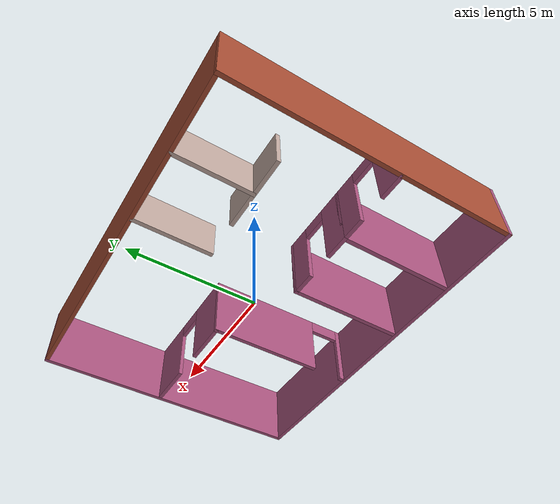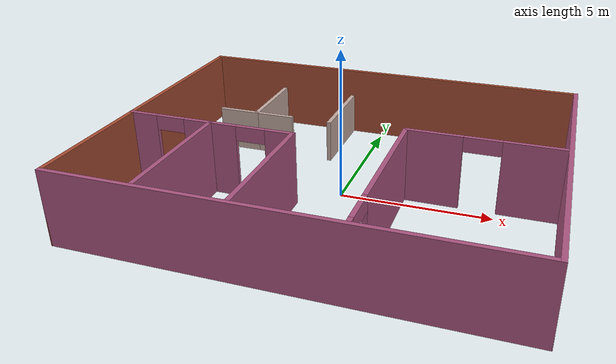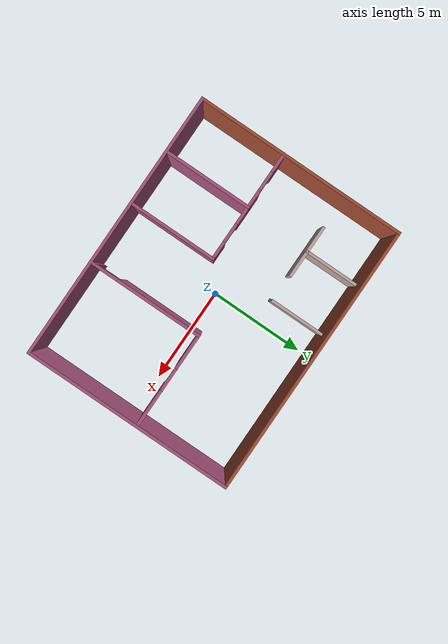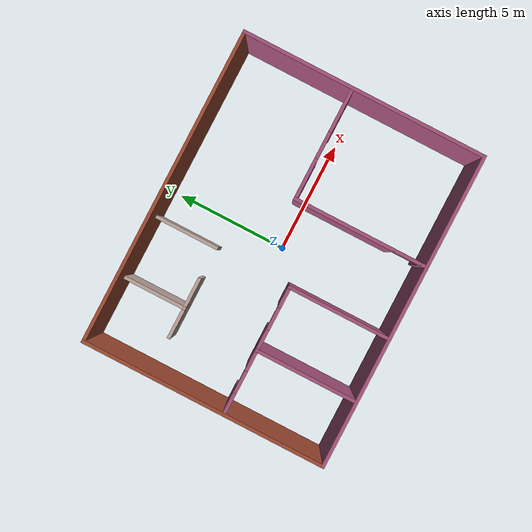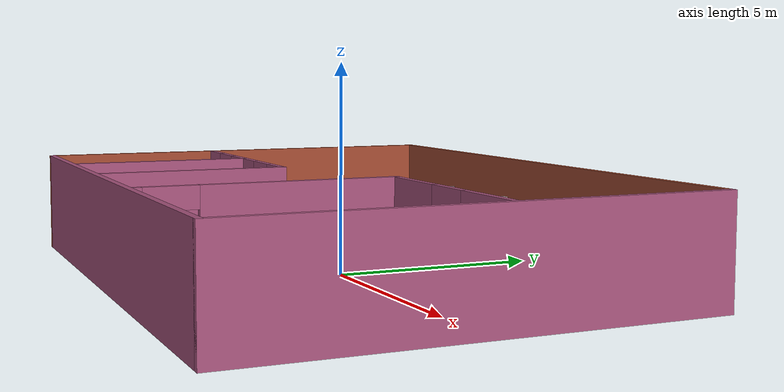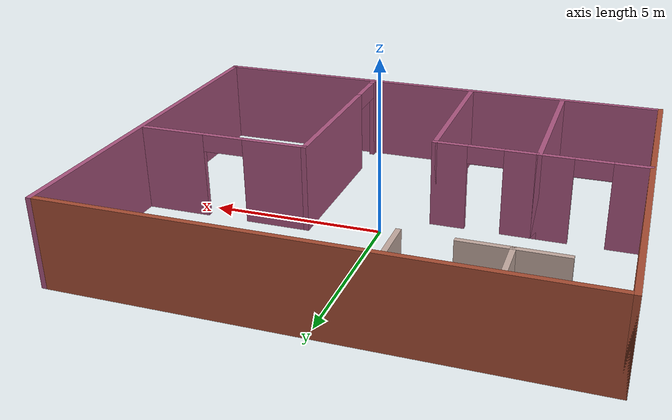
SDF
<?xml version='1.0'?>
<sdf version='1.6'>
  <model name='Building'>
    <pose frame=''>0 -0.075 0 0 -0 0</pose>
    <link name='Wall_12'>
      <pose frame=''>-5.528 -0.925 0 0 -0 0</pose>
      <visual name='Wall_12_Visual_0'>
        <pose frame=''>-1.00127 0 1.25 0 -0 0</pose>
        <geometry>
          <box>
            <size>0.997471 0.15 2.5</size>
          </box>
        </geometry>
        <material>
          <script>
            <uri>file://media/materials/scripts/gazebo.material</uri>
            <name>Gazebo/Grey</name>
          </script>
          <ambient>0.666667 0.333333 0.498039 1</ambient>
        </material>
        <meta>
          <layer>0</layer>
        </meta>
      </visual>
      <collision name='Wall_12_Collision_0'>
        <geometry>
          <box>
            <size>0.997471 0.15 2.5</size>
          </box>
        </geometry>
        <pose frame=''>-1.00127 0 1.25 0 -0 0</pose>
      </collision>
      <visual name='Wall_12_Visual_1'>
        <pose frame=''>0.998735 0 1.25 0 -0 0</pose>
        <geometry>
          <box>
            <size>1.00253 0.15 2.5</size>
          </box>
        </geometry>
        <material>
          <script>
            <uri>file://media/materials/scripts/gazebo.material</uri>
            <name>Gazebo/Grey</name>
          </script>
          <ambient>0.666667 0.333333 0.498039 1</ambient>
        </material>
        <meta>
          <layer>0</layer>
        </meta>
      </visual>
      <collision name='Wall_12_Collision_1'>
        <geometry>
          <box>
            <size>1.00253 0.15 2.5</size>
          </box>
        </geometry>
        <pose frame=''>0.998735 0 1.25 0 -0 0</pose>
      </collision>
      <visual name='Wall_12_Visual_2'>
        <pose frame=''>-0.002529 0 2.25 0 -0 0</pose>
        <geometry>
          <box>
            <size>1 0.15 0.5</size>
          </box>
        </geometry>
        <material>
          <script>
            <uri>file://media/materials/scripts/gazebo.material</uri>
            <name>Gazebo/Grey</name>
          </script>
          <ambient>0.666667 0.333333 0.498039 1</ambient>
        </material>
        <meta>
          <layer>0</layer>
        </meta>
      </visual>
      <collision name='Wall_12_Collision_2'>
        <geometry>
          <box>
            <size>1 0.15 0.5</size>
          </box>
        </geometry>
        <pose frame=''>-0.002529 0 2.25 0 -0 0</pose>
      </collision>
    </link>
    <link name='Wall_15'>
      <collision name='Wall_15_Collision'>
        <geometry>
          <box>
            <size>4.5 0.15 2.5</size>
          </box>
        </geometry>
        <pose frame=''>0 0 1.25 0 -0 0</pose>
      </collision>
      <visual name='Wall_15_Visual'>
        <pose frame=''>0 0 1.25 0 -0 0</pose>
        <geometry>
          <box>
            <size>4.5 0.15 2.5</size>
          </box>
        </geometry>
        <material>
          <script>
            <uri>file://media/materials/scripts/gazebo.material</uri>
            <name>Gazebo/Grey</name>
          </script>
          <ambient>0.666667 0.333333 0.498039 1</ambient>
        </material>
        <meta>
          <layer>0</layer>
        </meta>
      </visual>
      <pose frame=''>-4.103 -3.1 0 0 0 -1.5708</pose>
    </link>
    <link name='Wall_17'>
      <pose frame=''>-2.678 -0.925 0 0 -0 0</pose>
      <visual name='Wall_17_Visual_0'>
        <pose frame=''>-0.996642 0 1.25 0 -0 0</pose>
        <geometry>
          <box>
            <size>1.00672 0.15 2.5</size>
          </box>
        </geometry>
        <material>
          <script>
            <uri>file://media/materials/scripts/gazebo.material</uri>
            <name>Gazebo/Grey</name>
          </script>
          <ambient>0.666667 0.333333 0.498039 1</ambient>
        </material>
        <meta>
          <layer>0</layer>
        </meta>
      </visual>
      <collision name='Wall_17_Collision_0'>
        <geometry>
          <box>
            <size>1.00672 0.15 2.5</size>
          </box>
        </geometry>
        <pose frame=''>-0.996642 0 1.25 0 -0 0</pose>
      </collision>
      <visual name='Wall_17_Visual_1'>
        <pose frame=''>1.00336 0 1.25 0 -0 0</pose>
        <geometry>
          <box>
            <size>0.993284 0.15 2.5</size>
          </box>
        </geometry>
        <material>
          <script>
            <uri>file://media/materials/scripts/gazebo.material</uri>
            <name>Gazebo/Grey</name>
          </script>
          <ambient>0.666667 0.333333 0.498039 1</ambient>
        </material>
        <meta>
          <layer>0</layer>
        </meta>
      </visual>
      <collision name='Wall_17_Collision_1'>
        <geometry>
          <box>
            <size>0.993284 0.15 2.5</size>
          </box>
        </geometry>
        <pose frame=''>1.00336 0 1.25 0 -0 0</pose>
      </collision>
      <visual name='Wall_17_Visual_2'>
        <pose frame=''>0.006716 0 2.25 0 -0 0</pose>
        <geometry>
          <box>
            <size>1 0.15 0.5</size>
          </box>
        </geometry>
        <material>
          <script>
            <uri>file://media/materials/scripts/gazebo.material</uri>
            <name>Gazebo/Grey</name>
          </script>
          <ambient>0.666667 0.333333 0.498039 1</ambient>
        </material>
        <meta>
          <layer>0</layer>
        </meta>
      </visual>
      <collision name='Wall_17_Collision_2'>
        <geometry>
          <box>
            <size>1 0.15 0.5</size>
          </box>
        </geometry>
        <pose frame=''>0.006716 0 2.25 0 -0 0</pose>
      </collision>
    </link>
    <link name='Wall_19'>
      <collision name='Wall_19_Collision'>
        <geometry>
          <box>
            <size>4.5 0.15 2.5</size>
          </box>
        </geometry>
        <pose frame=''>0 0 1.25 0 -0 0</pose>
      </collision>
      <visual name='Wall_19_Visual'>
        <pose frame=''>0 0 1.25 0 -0 0</pose>
        <geometry>
          <box>
            <size>4.5 0.15 2.5</size>
          </box>
        </geometry>
        <material>
          <script>
            <uri>file://media/materials/scripts/gazebo.material</uri>
            <name>Gazebo/Grey</name>
          </script>
          <ambient>0.666667 0.333333 0.498039 1</ambient>
        </material>
        <meta>
          <layer>0</layer>
        </meta>
      </visual>
      <pose frame=''>-1.253 -3.1 0 0 0 -1.5708</pose>
    </link>
    <link name='Wall_21'>
      <collision name='Wall_21_Collision'>
        <geometry>
          <box>
            <size>3 0.15 1.5</size>
          </box>
        </geometry>
        <pose frame=''>0 0 0.75 0 -0 0</pose>
      </collision>
      <visual name='Wall_21_Visual'>
        <pose frame=''>0 0 0.75 0 -0 0</pose>
        <geometry>
          <box>
            <size>3 0.15 1.5</size>
          </box>
        </geometry>
        <material>
          <script>
            <uri>file://media/materials/scripts/gazebo.material</uri>
            <name>Gazebo/Grey</name>
          </script>
          <ambient>0.760784 0.662745 0.627451 1</ambient>
        </material>
        <meta>
          <layer>0</layer>
        </meta>
      </visual>
      <pose frame=''>-4.103 3.972 0 0 0 -1.5708</pose>
    </link>
    <link name='Wall_23'>
      <collision name='Wall_23_Collision'>
        <geometry>
          <box>
            <size>3 0.15 1.5</size>
          </box>
        </geometry>
        <pose frame=''>0 0 0.75 0 -0 0</pose>
      </collision>
      <visual name='Wall_23_Visual'>
        <pose frame=''>0 0 0.75 0 -0 0</pose>
        <geometry>
          <box>
            <size>3 0.15 1.5</size>
          </box>
        </geometry>
        <material>
          <script>
            <uri>file://media/materials/scripts/gazebo.material</uri>
            <name>Gazebo/Grey</name>
          </script>
          <ambient>0.760784 0.662745 0.627451 1</ambient>
        </material>
        <meta>
          <layer>0</layer>
        </meta>
      </visual>
      <pose frame=''>-1.253 3.952 0 0 0 -1.5708</pose>
    </link>
    <link name='Wall_25'>
      <collision name='Wall_25_Collision'>
        <geometry>
          <box>
            <size>1.5 0.15 1.5</size>
          </box>
        </geometry>
        <pose frame=''>0 0 0.75 0 -0 0</pose>
      </collision>
      <visual name='Wall_25_Visual'>
        <pose frame=''>0 0 0.75 0 -0 0</pose>
        <geometry>
          <box>
            <size>1.5 0.15 1.5</size>
          </box>
        </geometry>
        <material>
          <script>
            <uri>file://media/materials/scripts/gazebo.material</uri>
            <name>Gazebo/Grey</name>
          </script>
          <ambient>0.760784 0.662745 0.627451 1</ambient>
        </material>
        <meta>
          <layer>0</layer>
        </meta>
      </visual>
      <pose frame=''>-4.778 2.547 0 0 -0 3.14159</pose>
    </link>
    <link name='Wall_27'>
      <collision name='Wall_27_Collision'>
        <geometry>
          <box>
            <size>1.5 0.15 1.5</size>
          </box>
        </geometry>
        <pose frame=''>0 0 0.75 0 -0 0</pose>
      </collision>
      <visual name='Wall_27_Visual'>
        <pose frame=''>0 0 0.75 0 -0 0</pose>
        <geometry>
          <box>
            <size>1.5 0.15 1.5</size>
          </box>
        </geometry>
        <material>
          <script>
            <uri>file://media/materials/scripts/gazebo.material</uri>
            <name>Gazebo/Grey</name>
          </script>
          <ambient>0.760784 0.662745 0.627451 1</ambient>
        </material>
        <meta>
          <layer>0</layer>
        </meta>
      </visual>
      <pose frame=''>-3.428 2.547 0 0 -0 0</pose>
    </link>
    <link name='Wall_29'>
      <pose frame=''>2 -2.399 0 0 -0 1.5708</pose>
      <visual name='Wall_29_Visual_0'>
        <pose frame=''>-2.87898 0 1.25 0 -0 0</pose>
        <geometry>
          <box>
            <size>0.242034 0.15 2.5</size>
          </box>
        </geometry>
        <material>
          <script>
            <uri>file://media/materials/scripts/gazebo.material</uri>
            <name>Gazebo/Grey</name>
          </script>
          <ambient>0.666667 0.333333 0.498039 1</ambient>
        </material>
        <meta>
          <layer>0</layer>
        </meta>
      </visual>
      <collision name='Wall_29_Collision_0'>
        <geometry>
          <box>
            <size>0.242034 0.15 2.5</size>
          </box>
        </geometry>
        <pose frame=''>-2.87898 0 1.25 0 -0 0</pose>
      </collision>
      <visual name='Wall_29_Visual_1'>
        <pose frame=''>0.721017 0 1.25 0 -0 0</pose>
        <geometry>
          <box>
            <size>4.55797 0.15 2.5</size>
          </box>
        </geometry>
        <material>
          <script>
            <uri>file://media/materials/scripts/gazebo.material</uri>
            <name>Gazebo/Grey</name>
          </script>
          <ambient>0.666667 0.333333 0.498039 1</ambient>
        </material>
        <meta>
          <layer>0</layer>
        </meta>
      </visual>
      <collision name='Wall_29_Collision_1'>
        <geometry>
          <box>
            <size>4.55797 0.15 2.5</size>
          </box>
        </geometry>
        <pose frame=''>0.721017 0 1.25 0 -0 0</pose>
      </collision>
      <visual name='Wall_29_Visual_2'>
        <pose frame=''>-2.15797 0 2.25 0 -0 0</pose>
        <geometry>
          <box>
            <size>1.2 0.15 0.5</size>
          </box>
        </geometry>
        <material>
          <script>
            <uri>file://media/materials/scripts/gazebo.material</uri>
            <name>Gazebo/Grey</name>
          </script>
          <ambient>0.666667 0.333333 0.498039 1</ambient>
        </material>
        <meta>
          <layer>0</layer>
        </meta>
      </visual>
      <collision name='Wall_29_Collision_2'>
        <geometry>
          <box>
            <size>1.2 0.15 0.5</size>
          </box>
        </geometry>
        <pose frame=''>-2.15797 0 2.25 0 -0 0</pose>
      </collision>
    </link>
    <link name='Wall_3'>
      <collision name='Wall_3_Collision'>
        <geometry>
          <box>
            <size>14.15 0.15 2.5</size>
          </box>
        </geometry>
        <pose frame=''>0 0 1.25 0 -0 0</pose>
      </collision>
      <visual name='Wall_3_Visual'>
        <pose frame=''>0 0 1.25 0 -0 0</pose>
        <geometry>
          <box>
            <size>14.15 0.15 2.5</size>
          </box>
        </geometry>
        <material>
          <script>
            <uri>file://media/materials/scripts/gazebo.material</uri>
            <name>Gazebo/Grey</name>
          </script>
          <ambient>0.666667 0.333333 0.498039 1</ambient>
        </material>
        <meta>
          <layer>0</layer>
        </meta>
      </visual>
      <pose frame=''>0 -5.425 0 0 -0 0</pose>
    </link>
    <link name='Wall_31'>
      <pose frame=''>4.425 0.526 0 0 -0 0</pose>
      <visual name='Wall_31_Visual_0'>
        <pose frame=''>-1.55299 0 1.25 0 -0 0</pose>
        <geometry>
          <box>
            <size>1.89402 0.15 2.5</size>
          </box>
        </geometry>
        <material>
          <script>
            <uri>file://media/materials/scripts/gazebo.material</uri>
            <name>Gazebo/Grey</name>
          </script>
          <ambient>0.666667 0.333333 0.498039 1</ambient>
        </material>
        <meta>
          <layer>0</layer>
        </meta>
      </visual>
      <collision name='Wall_31_Collision_0'>
        <geometry>
          <box>
            <size>1.89402 0.15 2.5</size>
          </box>
        </geometry>
        <pose frame=''>-1.55299 0 1.25 0 -0 0</pose>
      </collision>
      <visual name='Wall_31_Visual_1'>
        <pose frame=''>1.54701 0 1.25 0 -0 0</pose>
        <geometry>
          <box>
            <size>1.90598 0.15 2.5</size>
          </box>
        </geometry>
        <material>
          <script>
            <uri>file://media/materials/scripts/gazebo.material</uri>
            <name>Gazebo/Grey</name>
          </script>
          <ambient>0.666667 0.333333 0.498039 1</ambient>
        </material>
        <meta>
          <layer>0</layer>
        </meta>
      </visual>
      <collision name='Wall_31_Collision_1'>
        <geometry>
          <box>
            <size>1.90598 0.15 2.5</size>
          </box>
        </geometry>
        <pose frame=''>1.54701 0 1.25 0 -0 0</pose>
      </collision>
      <visual name='Wall_31_Visual_2'>
        <pose frame=''>-0.005978 0 2.25 0 -0 0</pose>
        <geometry>
          <box>
            <size>1.2 0.15 0.5</size>
          </box>
        </geometry>
        <material>
          <script>
            <uri>file://media/materials/scripts/gazebo.material</uri>
            <name>Gazebo/Grey</name>
          </script>
          <ambient>0.666667 0.333333 0.498039 1</ambient>
        </material>
        <meta>
          <layer>0</layer>
        </meta>
      </visual>
      <collision name='Wall_31_Collision_2'>
        <geometry>
          <box>
            <size>1.2 0.15 0.5</size>
          </box>
        </geometry>
        <pose frame=''>-0.005978 0 2.25 0 -0 0</pose>
      </collision>
    </link>
    <link name='Wall_5'>
      <collision name='Wall_5_Collision'>
        <geometry>
          <box>
            <size>11 0.15 2.5</size>
          </box>
        </geometry>
        <pose frame=''>0 0 1.25 0 -0 0</pose>
      </collision>
      <visual name='Wall_5_Visual'>
        <pose frame=''>0 0 1.25 0 -0 0</pose>
        <geometry>
          <box>
            <size>11 0.15 2.5</size>
          </box>
        </geometry>
        <material>
          <script>
            <uri>file://media/materials/scripts/gazebo.material</uri>
            <name>Gazebo/Bricks</name>
          </script>
          <ambient>0.666667 0.333333 0.498039 1</ambient>
        </material>
        <meta>
          <layer>0</layer>
        </meta>
      </visual>
      <pose frame=''>-7 0 0 0 -0 1.5708</pose>
    </link>
    <link name='Wall_7'>
      <collision name='Wall_7_Collision'>
        <geometry>
          <box>
            <size>11 0.15 2.5</size>
          </box>
        </geometry>
        <pose frame=''>0 0 1.25 0 -0 0</pose>
      </collision>
      <visual name='Wall_7_Visual'>
        <pose frame=''>0 0 1.25 0 -0 0</pose>
        <geometry>
          <box>
            <size>11 0.15 2.5</size>
          </box>
        </geometry>
        <material>
          <script>
            <uri>file://media/materials/scripts/gazebo.material</uri>
            <name>Gazebo/Grey</name>
          </script>
          <ambient>0.666667 0.333333 0.498039 1</ambient>
        </material>
        <meta>
          <layer>0</layer>
        </meta>
      </visual>
      <pose frame=''>7 0 0 0 -0 1.5708</pose>
    </link>
    <link name='Wall_9'>
      <collision name='Wall_9_Collision'>
        <geometry>
          <box>
            <size>14 0.15 2.5</size>
          </box>
        </geometry>
        <pose frame=''>0 0 1.25 0 -0 0</pose>
      </collision>
      <visual name='Wall_9_Visual'>
        <pose frame=''>0 0 1.25 0 -0 0</pose>
        <geometry>
          <box>
            <size>14 0.15 2.5</size>
          </box>
        </geometry>
        <material>
          <script>
            <uri>file://media/materials/scripts/gazebo.material</uri>
            <name>Gazebo/Bricks</name>
          </script>
          <ambient>0.666667 0.333333 0.498039 1</ambient>
        </material>
        <meta>
          <layer>0</layer>
        </meta>
      </visual>
      <pose frame=''>-0.075 5.425 0 0 -0 0</pose>
    </link>
    <static>1</static>
  </model>
</sdf>
